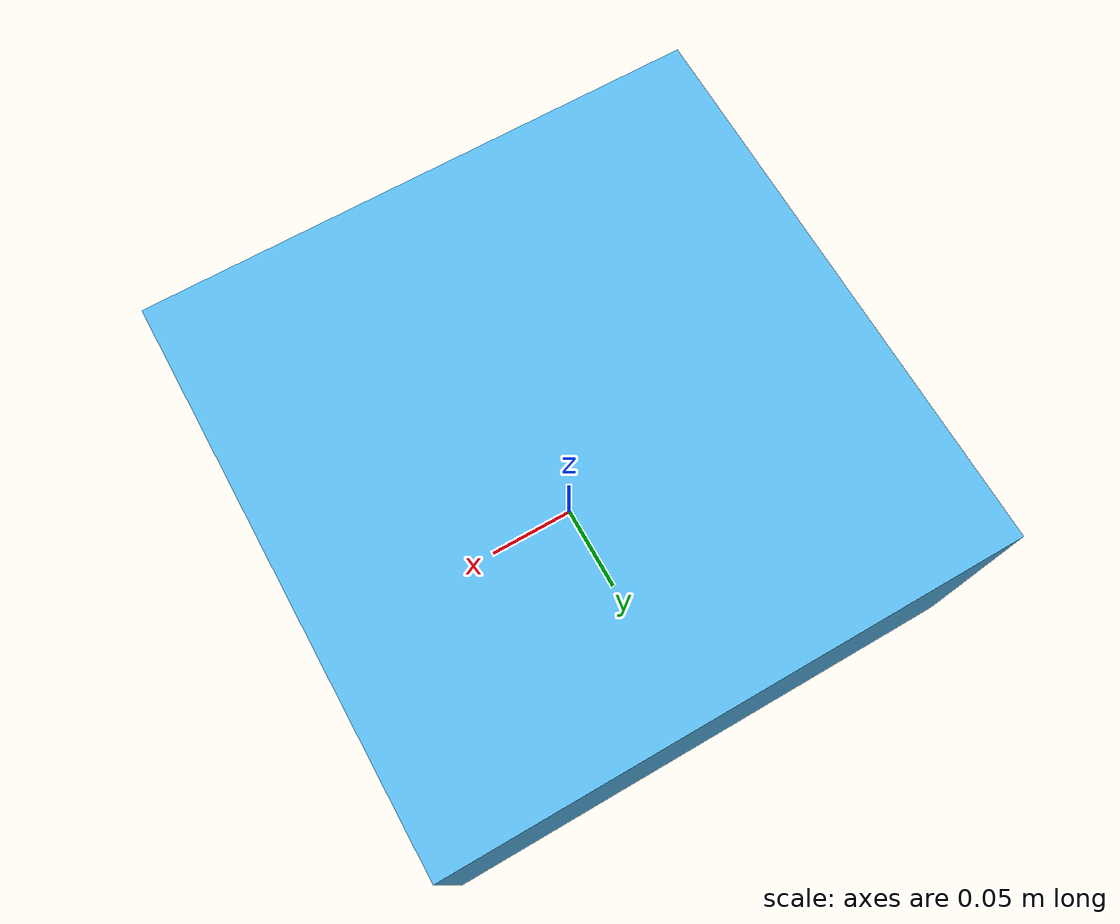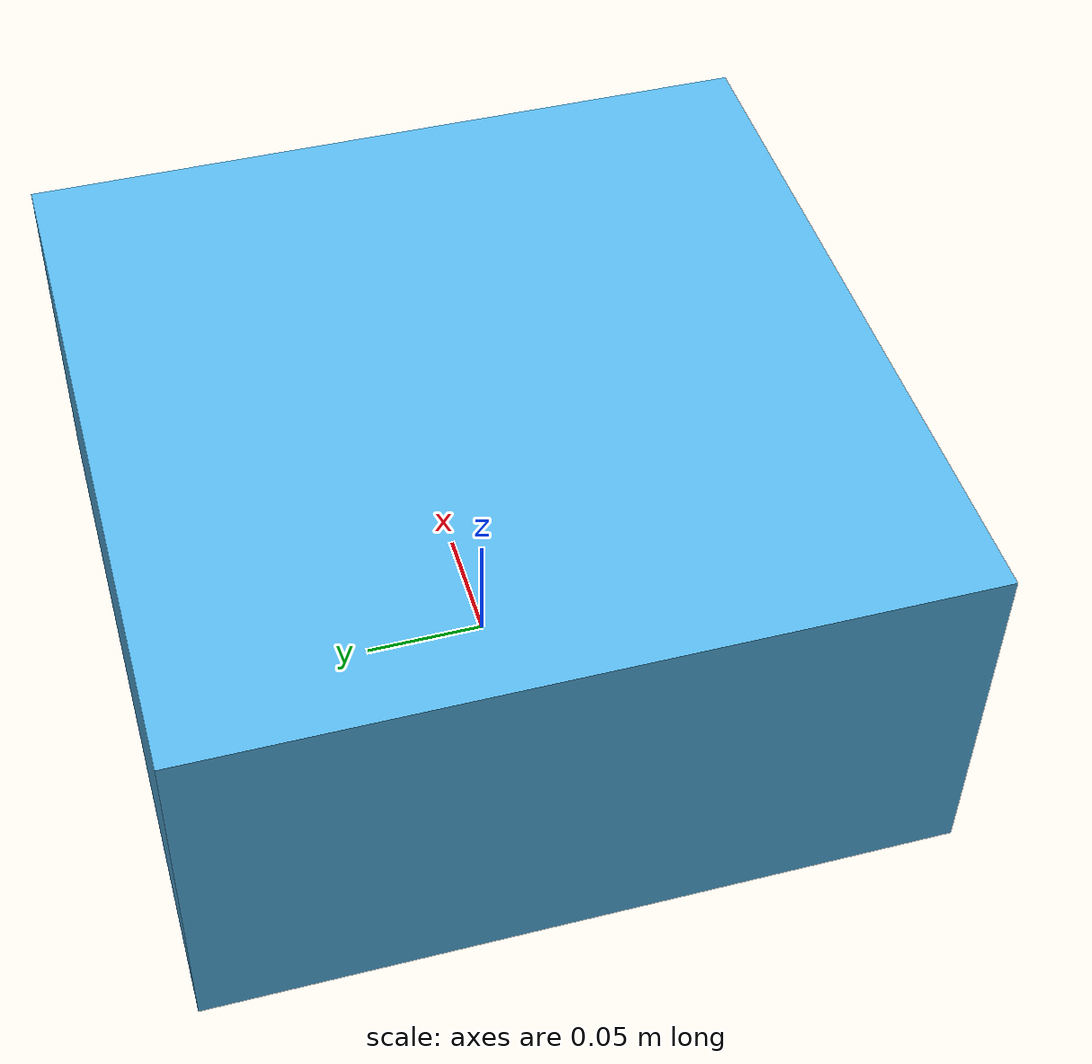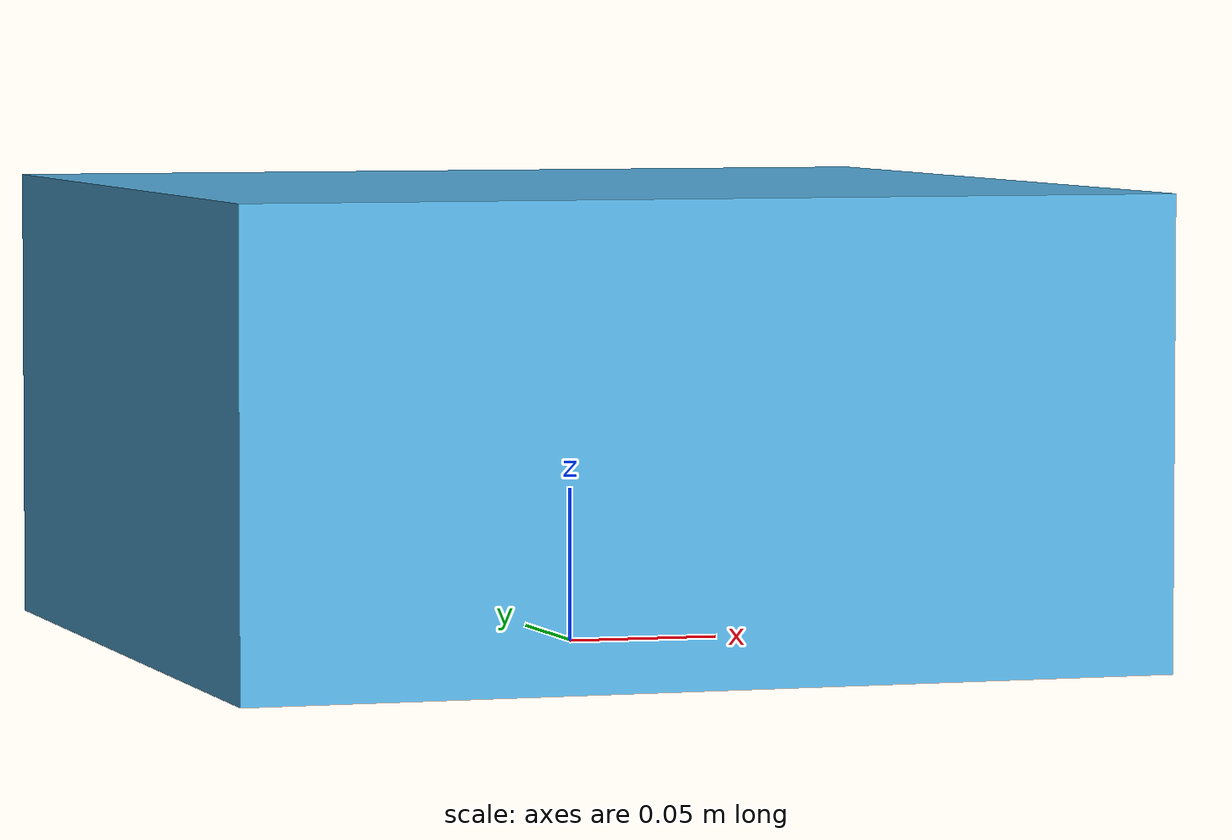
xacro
<?xml version="1.0"?>

<robot xmlns:xacro="http://www.ros.org/wiki/xacro" name="slam_bot">
    <link name="base_link">

    </link>

    <link name="chassis_link">
        <visual>
            <origin xyz="0.0 0.0 0.075"/>
            <geometry>
                <box size="0.3 0.3 0.15"/>
            </geometry>
        </visual>
    </link>

    <joint name="base_chasis_joint" type="fixed">
        <parent link="base_link"/>
        <child link="chassis_link"/>
    </joint>

</robot>
